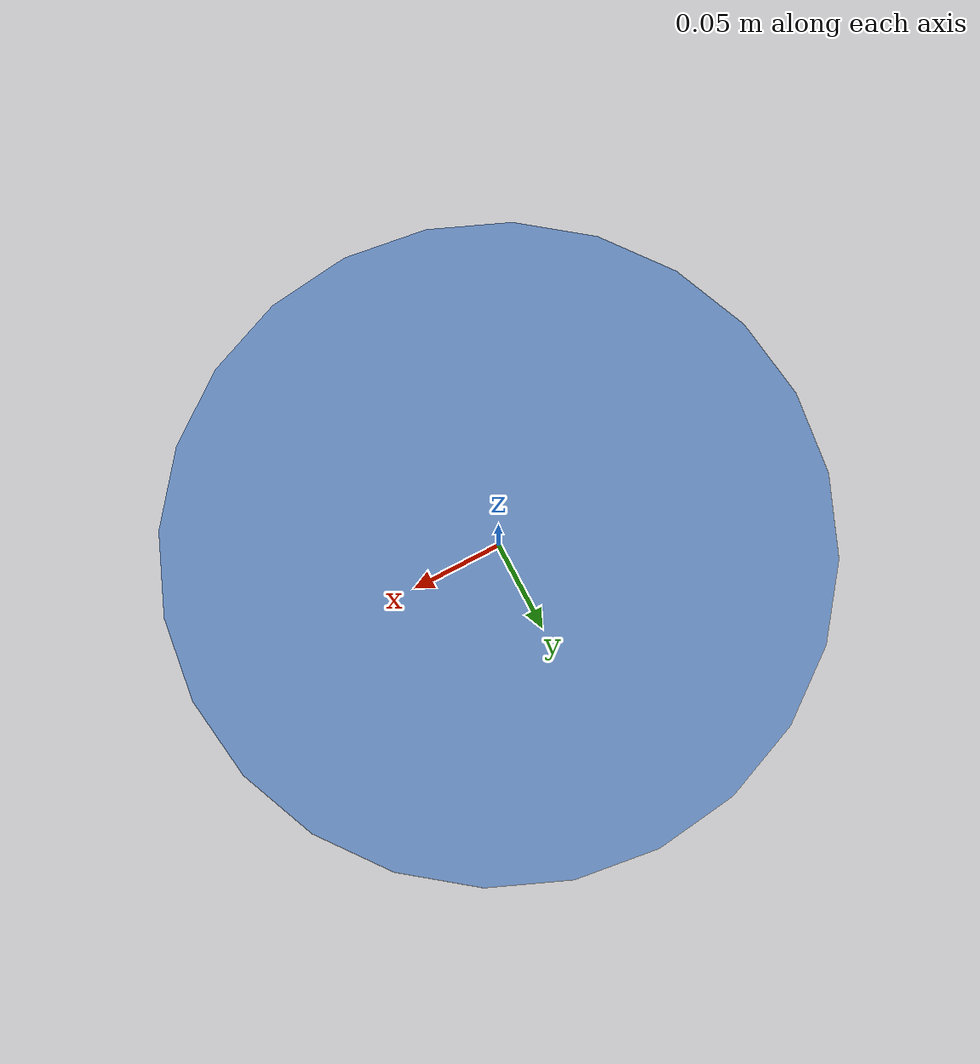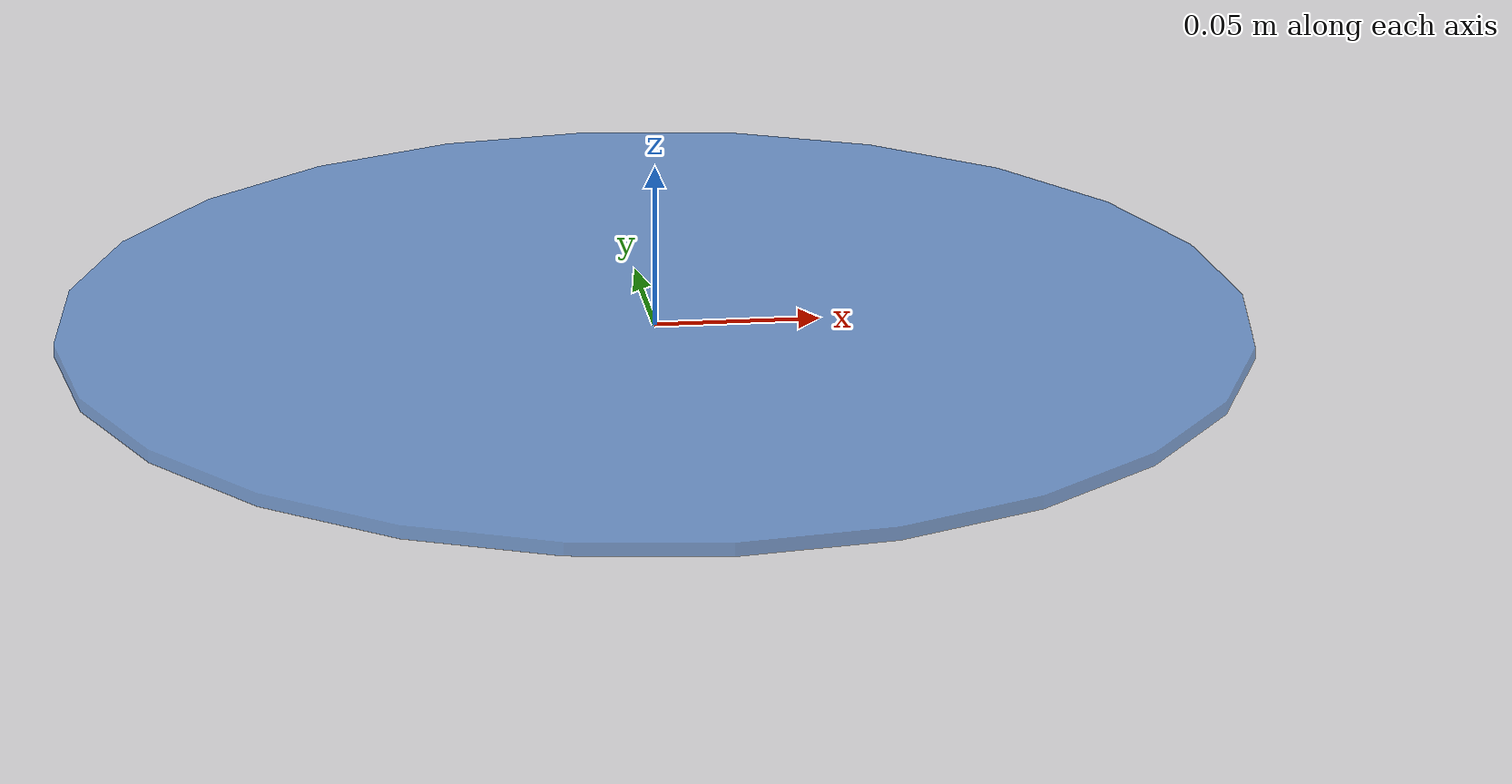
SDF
<?xml version="1.0"?>
<!-- Charco de agua: cilindro plano, semitransparente, static. -->
<sdf version="1.8">
  <model name="water_puddle">
    <static>true</static>
    <link name="link">
      <visual name="v">
        <geometry><cylinder><radius>0.18</radius><length>0.004</length></cylinder></geometry>
        <material>
          <ambient>0.10 0.30 0.55 0.6</ambient>
          <diffuse>0.20 0.45 0.80 0.6</diffuse>
          <specular>0.6 0.7 0.9 1</specular>
        </material>
      </visual>
    </link>
  </model>
</sdf>
